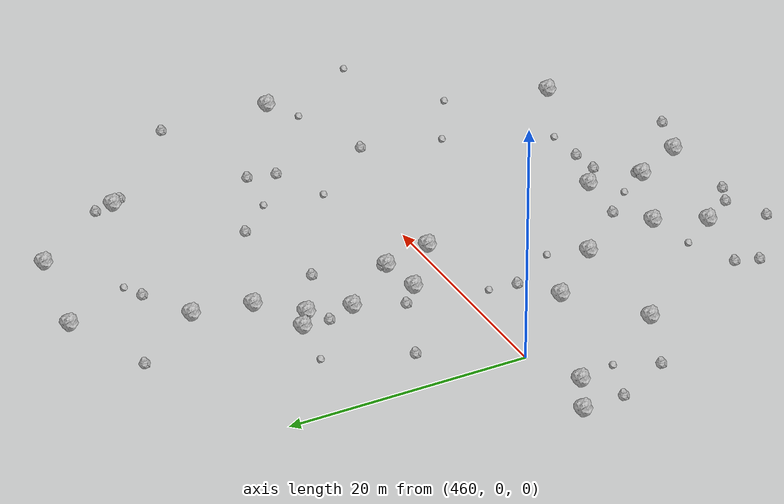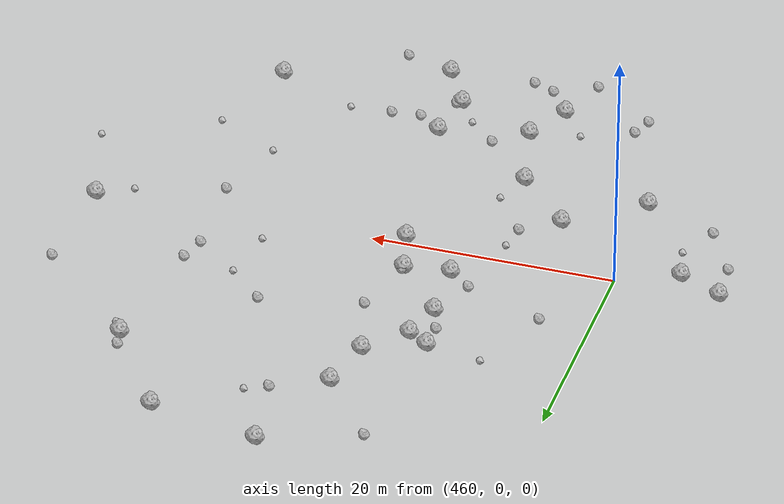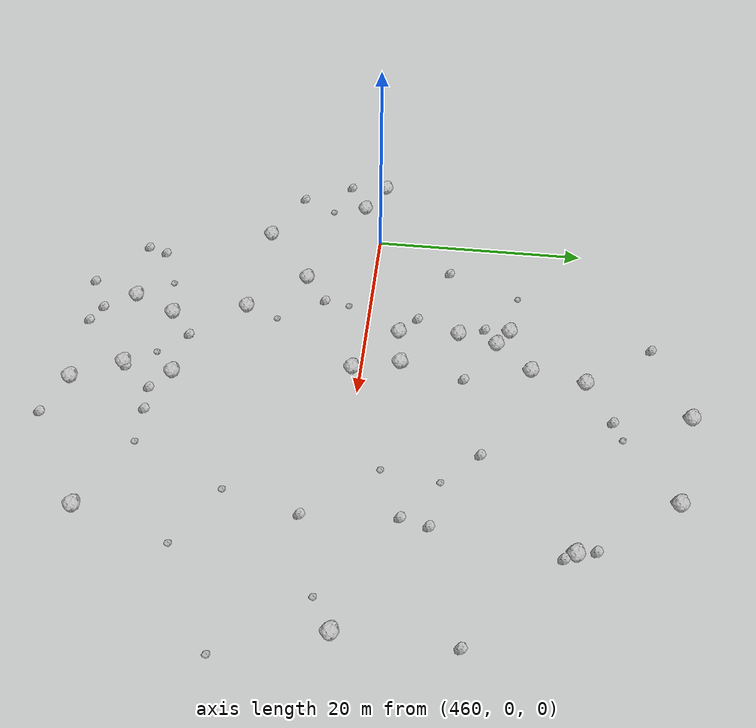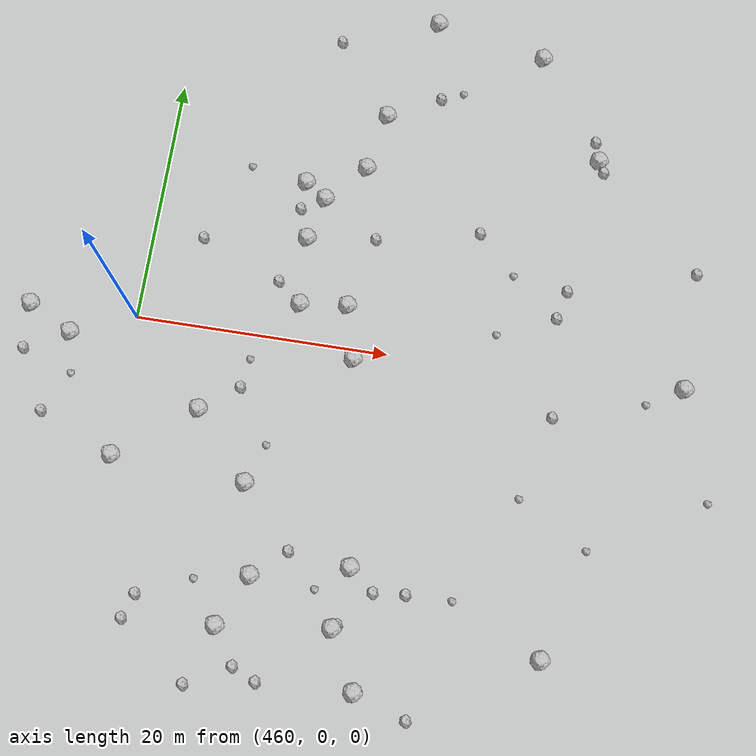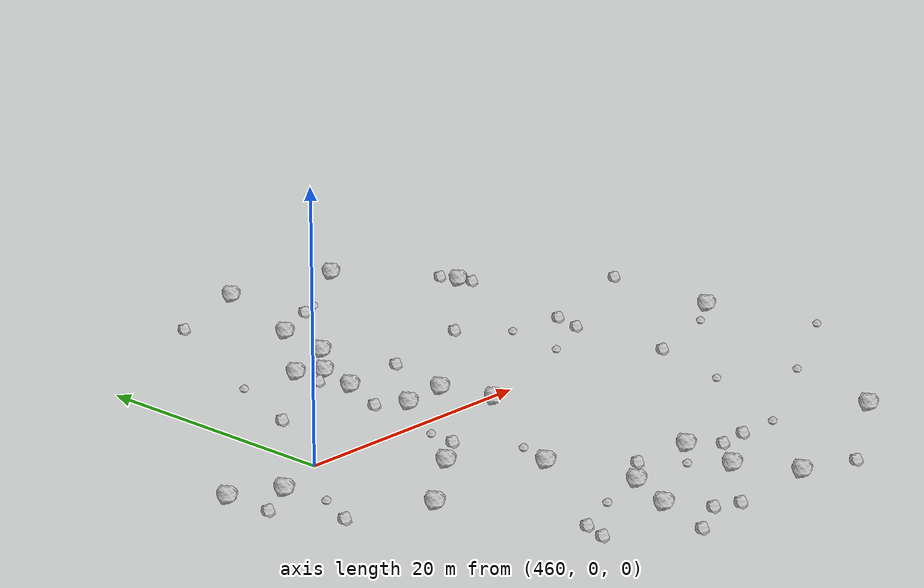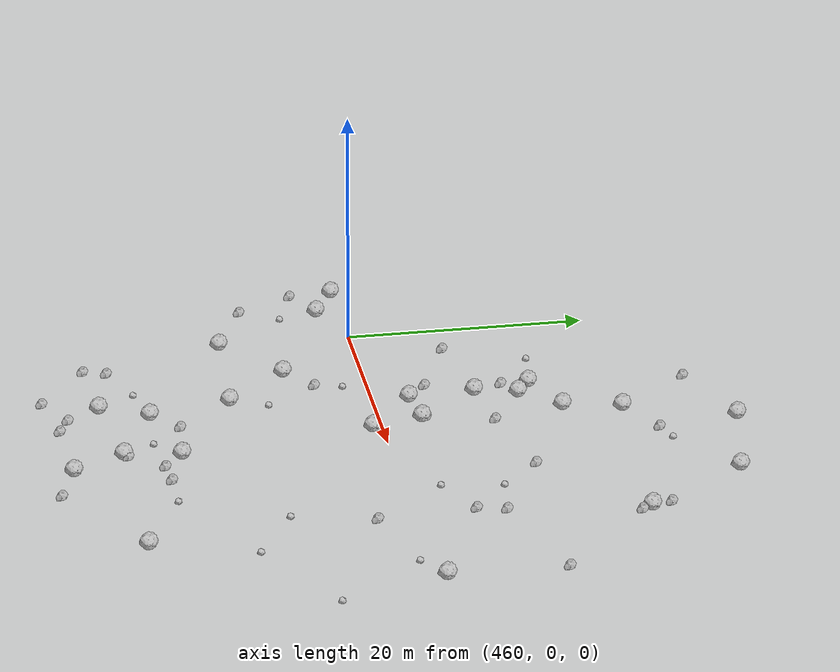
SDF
<sdf version="1.6">
 <world name="default">
  <include><uri>model://sun</uri></include>
  <model name="rock1_12_4">
   <include><uri>model://rock1</uri><pose>470.7784180822149 -11.628606223089879 0.5 0 0 0</pose></include>
  </model>
  <model name="rock1_12_5">
   <include><uri>model://rock1</uri><pose>479.67420486868554 -16.71169662064608 0.5 0 0 0</pose></include>
  </model>
  <model name="rock1_12_6">
   <include><uri>model://rock1</uri><pose>477.42373716506603 -0.8026335332215879 0.5 0 0 0</pose></include>
  </model>
  <model name="rock1_12_7">
   <include><uri>model://rock1</uri><pose>480.0641714425817 28.884915669462785 0.5 0 0 0</pose></include>
  </model>
  <model name="rock1_12_8">
   <include><uri>model://rock1</uri><pose>472.5732764045144 2.988718807649441 0.5 0 0 0</pose></include>
  </model>
  <model name="rock1_12_9">
   <include><uri>model://rock1</uri><pose>494.50589502310567 -21.23779967715675 0.5 0 0 0</pose></include>
  </model>
  <model name="rock1_12_10">
   <include><uri>model://rock1</uri><pose>460.28607487171547 -11.08223199977429 0.5 0 0 0</pose></include>
  </model>
  <model name="rock1_12_11">
   <include><uri>model://rock1</uri><pose>472.36930040843663 -18.418251252718427 0.5 0 0 0</pose></include>
  </model>
  <model name="rock1_12_12">
   <include><uri>model://rock1</uri><pose>479.0211190784723 -21.331849537492964 0.5 0 0 0</pose></include>
  </model>
  <model name="rock1_12_13">
   <include><uri>model://rock1</uri><pose>455.1577176803109 -2.0285807898395234 0.5 0 0 0</pose></include>
  </model>
  <model name="rock1_12_14">
   <include><uri>model://rock1</uri><pose>494.61304619282066 18.619749605863547 0.5 0 0 0</pose></include>
  </model>
  <model name="rock1_12_15">
   <include><uri>model://rock1</uri><pose>472.24932648699405 8.497243693607594 0.5 0 0 0</pose></include>
  </model>
  <model name="rock1_12_16">
   <include><uri>model://rock1</uri><pose>477.03497023419726 19.96709364725136 0.5 0 0 0</pose></include>
  </model>
  <model name="rock1_12_17">
   <include><uri>model://rock1</uri><pose>473.1516311758393 12.01466348742494 0.5 0 0 0</pose></include>
  </model>
  <model name="rock1_12_18">
   <include><uri>model://rock1</uri><pose>476.31272508278477 3.4269006690913386 0.5 0 0 0</pose></include>
  </model>
  <model name="rock1_12_19">
   <include><uri>model://rock1</uri><pose>470.4712296277455 -22.40169060009259 0.5 0 0 0</pose></include>
  </model>
  <model name="rock1_12_20">
   <include><uri>model://rock1</uri><pose>451.6028703382451 -0.20667263503321465 0.5 0 0 0</pose></include>
  </model>
  <model name="rock1_12_21">
   <include><uri>model://rock1</uri><pose>476.06271663946495 15.15774576100538 0.5 0 0 0</pose></include>
  </model>
  <model name="rock1_12_22">
   <include><uri>model://rock1</uri><pose>471.4176982267181 13.188450939473121 0.5 0 0 0</pose></include>
  </model>
  <model name="rock1_12_23">
   <include><uri>model://rock1</uri><pose>466.2428041119552 -6.538534222317615 0.5 0 0 0</pose></include>
  </model>
  <model name="rock1_12_24">
   <include><uri>model://rock1</uri><pose>503.14328204971844 0.6952566835419915 0.5 0 0 0</pose></include>
  </model>
  <model name="rock1_12_25">
   <include><uri>model://rock1</uri><pose>481.2786999669752 -25.59721838511772 0.5 0 0 0</pose></include>
  </model>
  <model name="rock1_12_26">
   <include><uri>model://rock1</uri><pose>489.08600224003175 27.03462421810101 0.5 0 0 0</pose></include>
  </model>
  <model name="rock2_12_0">
   <include><uri>model://rock2</uri><pose>481.632762527767 -18.306366037483638 0.3 0 0 0</pose></include>
  </model>
  <model name="rock2_12_1">
   <include><uri>model://rock2</uri><pose>494.1923646761138 20.272285126159865 0.3 0 0 0</pose></include>
  </model>
  <model name="rock2_12_2">
   <include><uri>model://rock2</uri><pose>469.1298846438266 -4.350704399236054 0.3 0 0 0</pose></include>
  </model>
  <model name="rock2_12_3">
   <include><uri>model://rock2</uri><pose>471.3271518364678 10.90652485508221 0.3 0 0 0</pose></include>
  </model>
  <model name="rock2_12_4">
   <include><uri>model://rock2</uri><pose>484.0687359193097 -18.08708495022463 0.3 0 0 0</pose></include>
  </model>
  <model name="rock2_12_5">
   <include><uri>model://rock2</uri><pose>474.09197509172 -25.96646362017734 0.3 0 0 0</pose></include>
  </model>
  <model name="rock2_12_6">
   <include><uri>model://rock2</uri><pose>503.31995449912 10.229334123177921 0.3 0 0 0</pose></include>
  </model>
  <model name="rock2_12_7">
   <include><uri>model://rock2</uri><pose>492.7387847132849 4.9085551002919985 0.3 0 0 0</pose></include>
  </model>
  <model name="rock2_12_8">
   <include><uri>model://rock2</uri><pose>495.1024776534974 17.731147161607907 0.3 0 0 0</pose></include>
  </model>
  <model name="rock2_12_9">
   <include><uri>model://rock2</uri><pose>474.91160996952743 -16.239664715975557 0.3 0 0 0</pose></include>
  </model>
  <model name="rock2_12_10">
   <include><uri>model://rock2</uri><pose>493.30577386305265 -3.057366741078191 0.3 0 0 0</pose></include>
  </model>
  <model name="rock2_12_11">
   <include><uri>model://rock2</uri><pose>451.76959785085273 -3.82531375694607 0.3 0 0 0</pose></include>
  </model>
  <model name="rock2_12_12">
   <include><uri>model://rock2</uri><pose>476.3629508593229 3.7448997303133638 0.3 0 0 0</pose></include>
  </model>
  <model name="rock2_12_13">
   <include><uri>model://rock2</uri><pose>485.88262030811387 11.017391926443885 0.3 0 0 0</pose></include>
  </model>
  <model name="rock2_12_14">
   <include><uri>model://rock2</uri><pose>481.1986902769526 22.17319981943946 0.3 0 0 0</pose></include>
  </model>
  <model name="rock2_12_15">
   <include><uri>model://rock2</uri><pose>468.88297412411055 -26.913174180681505 0.3 0 0 0</pose></include>
  </model>
  <model name="rock2_12_16">
   <include><uri>model://rock2</uri><pose>463.48602181589837 -22.94601062102595 0.3 0 0 0</pose></include>
  </model>
  <model name="rock2_12_17">
   <include><uri>model://rock2</uri><pose>493.3184719358112 7.24319963219849 0.3 0 0 0</pose></include>
  </model>
  <model name="rock2_12_18">
   <include><uri>model://rock2</uri><pose>479.3918676691766 -21.00948080388394 0.3 0 0 0</pose></include>
  </model>
  <model name="rock2_12_19">
   <include><uri>model://rock2</uri><pose>454.21660066160183 -8.521979138976793 0.3 0 0 0</pose></include>
  </model>
  <model name="rock2_12_20">
   <include><uri>model://rock2</uri><pose>472.32934181119253 26.059094554112505 0.3 0 0 0</pose></include>
  </model>
  <model name="rock2_12_21">
   <include><uri>model://rock2</uri><pose>477.6835518623007 9.247427816047157 0.3 0 0 0</pose></include>
  </model>
  <model name="rock2_12_22">
   <include><uri>model://rock2</uri><pose>464.14039252877626 -21.048002165268404 0.3 0 0 0</pose></include>
  </model>
  <model name="rock2_12_23">
   <include><uri>model://rock2</uri><pose>470.62122852359863 4.613316780030637 0.3 0 0 0</pose></include>
  </model>
  <model name="rock2_12_24">
   <include><uri>model://rock2</uri><pose>485.37370367501046 -27.00095765955269 0.3 0 0 0</pose></include>
  </model>
  <model name="rock2_12_25">
   <include><uri>model://rock2</uri><pose>464.0586693988979 7.280122624417267 0.3 0 0 0</pose></include>
  </model>
  <model name="rock2_12_26">
   <include><uri>model://rock2</uri><pose>472.2441855132018 -25.12219802855222 0.3 0 0 0</pose></include>
  </model>
  <model name="rock3_12_0">
   <include><uri>model://rock3</uri><pose>468.22340793140836 -19.31394088217629 0.2 0 0 0</pose></include>
  </model>
  <model name="rock3_12_1">
   <include><uri>model://rock3</uri><pose>466.80566861422295 13.913373416289772 0.2 0 0 0</pose></include>
  </model>
  <model name="rock3_12_2">
   <include><uri>model://rock3</uri><pose>455.81856000827037 -5.2684480908284606 0.2 0 0 0</pose></include>
  </model>
  <model name="rock3_12_3">
   <include><uri>model://rock3</uri><pose>500.3372505860142 -0.9571122920394899 0.2 0 0 0</pose></include>
  </model>
  <model name="rock3_12_4">
   <include><uri>model://rock3</uri><pose>488.9362275471899 7.863541637752611 0.2 0 0 0</pose></include>
  </model>
  <model name="rock3_12_5">
   <include><uri>model://rock3</uri><pose>496.98481540067354 -12.834154671061071 0.2 0 0 0</pose></include>
  </model>
  <model name="rock3_12_6">
   <include><uri>model://rock3</uri><pose>469.45912030114965 -2.045092046323358 0.2 0 0 0</pose></include>
  </model>
  <model name="rock3_12_7">
   <include><uri>model://rock3</uri><pose>491.5262105081885 -9.710084454086306 0.2 0 0 0</pose></include>
  </model>
  <model name="rock3_12_8">
   <include><uri>model://rock3</uri><pose>482.93821657029713 22.890552771558234 0.2 0 0 0</pose></include>
  </model>
  <model name="rock3_12_9">
   <include><uri>model://rock3</uri><pose>505.7060216880633 -7.882676967541208 0.2 0 0 0</pose></include>
  </model>
  <model name="rock3_12_10">
   <include><uri>model://rock3</uri><pose>487.53783438781375 -18.03832520639394 0.2 0 0 0</pose></include>
  </model>
  <model name="rock3_12_11">
   <include><uri>model://rock3</uri><pose>471.85687131275034 -8.549395667094291 0.2 0 0 0</pose></include>
  </model>
  <model name="rock3_12_12">
   <include><uri>model://rock3</uri><pose>488.20486494964746 2.855652717940451 0.2 0 0 0</pose></include>
  </model>
  <model name="rock3_12_13">
   <include><uri>model://rock3</uri><pose>477.28497592282196 -18.733270425586678 0.2 0 0 0</pose></include>
  </model>
 </world>
</sdf>
